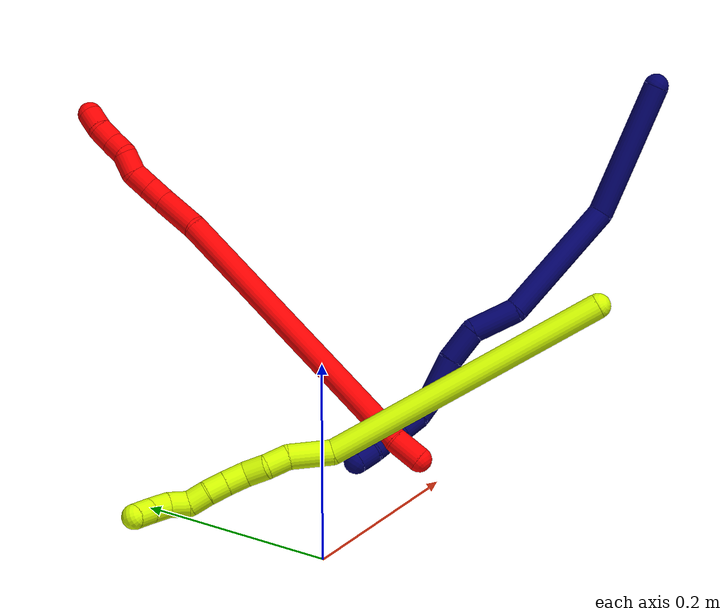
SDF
<sdf version="1.7">
 <world name="default">
  <model name="2">
   <static>0</static>
   <link name="2">
    <collision name="collision-cylinder-e_1_1_4">
     <pose>-0.002412 0.002305 0.014817 -0.15431 -0.159498 0.012357</pose>
     <geometry><cylinder><radius>0.0125</radius><length>0.030376</length></cylinder></geometry>
     <surface>
      <friction><ode><mu>1.16</mu><mu2>1.16</mu2><slip1>0</slip1><slip2>0</slip2></ode></friction>
      <contact><ode><kp>1e+06</kp><kd>1</kd><max_vel>0</max_vel><min_depth>0.001</min_depth></ode></contact>
     </surface>
    </collision>
    <visual name="visual-cylinder-e_1_1_4">
     <pose>-0.002412 0.002305 0.014817 -0.15431 -0.159498 0.012357</pose>
     <geometry><cylinder><radius>0.0125</radius><length>0.030376</length></cylinder></geometry>
     <material><ambient>1 0 0 1</ambient></material>
    </visual>
    <collision name="collision-cylinder-e_2_4_5">
     <pose>0.001014 0.017735 0.178184 -0.088128 0.039133 -0.001726</pose>
     <geometry><cylinder><radius>0.0125</radius><length>0.298486</length></cylinder></geometry>
     <surface>
      <friction><ode><mu>1.16</mu><mu2>1.16</mu2><slip1>0</slip1><slip2>0</slip2></ode></friction>
      <contact><ode><kp>1e+06</kp><kd>1</kd><max_vel>0</max_vel><min_depth>0.001</min_depth></ode></contact>
     </surface>
    </collision>
    <visual name="visual-cylinder-e_2_4_5">
     <pose>0.001014 0.017735 0.178184 -0.088128 0.039133 -0.001726</pose>
     <geometry><cylinder><radius>0.0125</radius><length>0.298486</length></cylinder></geometry>
     <material><ambient>1 0 0 1</ambient></material>
    </visual>
    <collision name="collision-cylinder-e_3_5_6">
     <pose>0.01281 0.037009 0.348718 -0.272708 0.255247 -0.035209</pose>
     <geometry><cylinder><radius>0.0125</radius><length>0.047183</length></cylinder></geometry>
     <surface>
      <friction><ode><mu>1.16</mu><mu2>1.16</mu2><slip1>0</slip1><slip2>0</slip2></ode></friction>
      <contact><ode><kp>1e+06</kp><kd>1</kd><max_vel>0</max_vel><min_depth>0.001</min_depth></ode></contact>
     </surface>
    </collision>
    <visual name="visual-cylinder-e_3_5_6">
     <pose>0.01281 0.037009 0.348718 -0.272708 0.255247 -0.035209</pose>
     <geometry><cylinder><radius>0.0125</radius><length>0.047183</length></cylinder></geometry>
     <material><ambient>1 0 0 1</ambient></material>
    </visual>
    <collision name="collision-cylinder-e_4_6_7">
     <pose>0.017797 0.044508 0.381524 -0.124245 -0.088638 0.005517</pose>
     <geometry><cylinder><radius>0.0125</radius><length>0.021899</length></cylinder></geometry>
     <surface>
      <friction><ode><mu>1.16</mu><mu2>1.16</mu2><slip1>0</slip1><slip2>0</slip2></ode></friction>
      <contact><ode><kp>1e+06</kp><kd>1</kd><max_vel>0</max_vel><min_depth>0.001</min_depth></ode></contact>
     </surface>
    </collision>
    <visual name="visual-cylinder-e_4_6_7">
     <pose>0.017797 0.044508 0.381524 -0.124245 -0.088638 0.005517</pose>
     <geometry><cylinder><radius>0.0125</radius><length>0.021899</length></cylinder></geometry>
     <material><ambient>1 0 0 1</ambient></material>
    </visual>
    <collision name="collision-cylinder-e_5_7_8">
     <pose>0.014683 0.046631 0.402243 -0.07774 -0.212753 0.008305</pose>
     <geometry><cylinder><radius>0.0125</radius><length>0.020312</length></cylinder></geometry>
     <surface>
      <friction><ode><mu>1.16</mu><mu2>1.16</mu2><slip1>0</slip1><slip2>0</slip2></ode></friction>
      <contact><ode><kp>1e+06</kp><kd>1</kd><max_vel>0</max_vel><min_depth>0.001</min_depth></ode></contact>
     </surface>
    </collision>
    <visual name="visual-cylinder-e_5_7_8">
     <pose>0.014683 0.046631 0.402243 -0.07774 -0.212753 0.008305</pose>
     <geometry><cylinder><radius>0.0125</radius><length>0.020312</length></cylinder></geometry>
     <material><ambient>1 0 0 1</ambient></material>
    </visual>
    <collision name="collision-cylinder-e_6_8_9">
     <pose>0.01299 0.04481 0.422571 0.243527 0.041912 0.005129</pose>
     <geometry><cylinder><radius>0.0125</radius><length>0.021515</length></cylinder></geometry>
     <surface>
      <friction><ode><mu>1.16</mu><mu2>1.16</mu2><slip1>0</slip1><slip2>0</slip2></ode></friction>
      <contact><ode><kp>1e+06</kp><kd>1</kd><max_vel>0</max_vel><min_depth>0.001</min_depth></ode></contact>
     </surface>
    </collision>
    <visual name="visual-cylinder-e_6_8_9">
     <pose>0.01299 0.04481 0.422571 0.243527 0.041912 0.005129</pose>
     <geometry><cylinder><radius>0.0125</radius><length>0.021515</length></cylinder></geometry>
     <material><ambient>1 0 0 1</ambient></material>
    </visual>
    <collision name="collision-cylinder-e_7_9_10">
     <pose>0.016219 0.044321 0.442497 -0.217937 0.278353 -0.030648</pose>
     <geometry><cylinder><radius>0.0125</radius><length>0.020227</length></cylinder></geometry>
     <surface>
      <friction><ode><mu>1.16</mu><mu2>1.16</mu2><slip1>0</slip1><slip2>0</slip2></ode></friction>
      <contact><ode><kp>1e+06</kp><kd>1</kd><max_vel>0</max_vel><min_depth>0.001</min_depth></ode></contact>
     </surface>
    </collision>
    <visual name="visual-cylinder-e_7_9_10">
     <pose>0.016219 0.044321 0.442497 -0.217937 0.278353 -0.030648</pose>
     <geometry><cylinder><radius>0.0125</radius><length>0.020227</length></cylinder></geometry>
     <material><ambient>1 0 0 1</ambient></material>
    </visual>
    <collision name="collision-cylinder-e_8_10_11">
     <pose>0.018548 0.04702 0.461964 -0.059696 -0.045063 0.001346</pose>
     <geometry><cylinder><radius>0.0125</radius><length>0.020001</length></cylinder></geometry>
     <surface>
      <friction><ode><mu>1.16</mu><mu2>1.16</mu2><slip1>0</slip1><slip2>0</slip2></ode></friction>
      <contact><ode><kp>1e+06</kp><kd>1</kd><max_vel>0</max_vel><min_depth>0.001</min_depth></ode></contact>
     </surface>
    </collision>
    <visual name="visual-cylinder-e_8_10_11">
     <pose>0.018548 0.04702 0.461964 -0.059696 -0.045063 0.001346</pose>
     <geometry><cylinder><radius>0.0125</radius><length>0.020001</length></cylinder></geometry>
     <material><ambient>1 0 0 1</ambient></material>
    </visual>
    <collision name="collision-cylinder-e_9_11_2">
     <pose>0.020791 0.047704 0.481566 -0.009144 0.272775 -0.001255</pose>
     <geometry><cylinder><radius>0.0125</radius><length>0.02</length></cylinder></geometry>
     <surface>
      <friction><ode><mu>1.16</mu><mu2>1.16</mu2><slip1>0</slip1><slip2>0</slip2></ode></friction>
      <contact><ode><kp>1e+06</kp><kd>1</kd><max_vel>0</max_vel><min_depth>0.001</min_depth></ode></contact>
     </surface>
    </collision>
    <visual name="visual-cylinder-e_9_11_2">
     <pose>0.020791 0.047704 0.481566 -0.009144 0.272775 -0.001255</pose>
     <geometry><cylinder><radius>0.0125</radius><length>0.02</length></cylinder></geometry>
     <material><ambient>1 0 0 1</ambient></material>
    </visual>
    <collision name="collision-sphere-2">
     <pose>0.023485 0.047792 0.491196 0 -0 0</pose>
     <geometry><sphere><radius>0.0125</radius></sphere></geometry>
     <surface>
      <friction><ode><mu>1.16</mu><mu2>1.16</mu2><slip1>0</slip1><slip2>0</slip2></ode></friction>
      <contact><ode><kp>1e+06</kp><kd>1</kd><max_vel>0</max_vel><min_depth>0.001</min_depth></ode></contact>
     </surface>
    </collision>
    <visual name="visual-sphere-2">
     <pose>0.023485 0.047792 0.491196 0 -0 0</pose>
     <geometry><sphere><radius>0.0125</radius></sphere></geometry>
     <material><ambient>1 0 0 1</ambient></material>
    </visual>
    <collision name="collision-sphere-11">
     <pose>0.018097 0.047616 0.471936 0 -0 0</pose>
     <geometry><sphere><radius>0.0125</radius></sphere></geometry>
     <surface>
      <friction><ode><mu>1.16</mu><mu2>1.16</mu2><slip1>0</slip1><slip2>0</slip2></ode></friction>
      <contact><ode><kp>1e+06</kp><kd>1</kd><max_vel>0</max_vel><min_depth>0.001</min_depth></ode></contact>
     </surface>
    </collision>
    <visual name="visual-sphere-11">
     <pose>0.018097 0.047616 0.471936 0 -0 0</pose>
     <geometry><sphere><radius>0.0125</radius></sphere></geometry>
     <material><ambient>1 0 0 1</ambient></material>
    </visual>
    <collision name="collision-sphere-10">
     <pose>0.018998 0.046424 0.451991 0 -0 0</pose>
     <geometry><sphere><radius>0.0125</radius></sphere></geometry>
     <surface>
      <friction><ode><mu>1.16</mu><mu2>1.16</mu2><slip1>0</slip1><slip2>0</slip2></ode></friction>
      <contact><ode><kp>1e+06</kp><kd>1</kd><max_vel>0</max_vel><min_depth>0.001</min_depth></ode></contact>
     </surface>
    </collision>
    <visual name="visual-sphere-10">
     <pose>0.018998 0.046424 0.451991 0 -0 0</pose>
     <geometry><sphere><radius>0.0125</radius></sphere></geometry>
     <material><ambient>1 0 0 1</ambient></material>
    </visual>
    <collision name="collision-sphere-9">
     <pose>0.01344 0.042219 0.433003 0 -0 0</pose>
     <geometry><sphere><radius>0.0125</radius></sphere></geometry>
     <surface>
      <friction><ode><mu>1.16</mu><mu2>1.16</mu2><slip1>0</slip1><slip2>0</slip2></ode></friction>
      <contact><ode><kp>1e+06</kp><kd>1</kd><max_vel>0</max_vel><min_depth>0.001</min_depth></ode></contact>
     </surface>
    </collision>
    <visual name="visual-sphere-9">
     <pose>0.01344 0.042219 0.433003 0 -0 0</pose>
     <geometry><sphere><radius>0.0125</radius></sphere></geometry>
     <material><ambient>1 0 0 1</ambient></material>
    </visual>
    <collision name="collision-sphere-4">
     <pose>-0.004824 0.004609 0.029634 0 -0 0</pose>
     <geometry><sphere><radius>0.0125</radius></sphere></geometry>
     <surface>
      <friction><ode><mu>1.16</mu><mu2>1.16</mu2><slip1>0</slip1><slip2>0</slip2></ode></friction>
      <contact><ode><kp>1e+06</kp><kd>1</kd><max_vel>0</max_vel><min_depth>0.001</min_depth></ode></contact>
     </surface>
    </collision>
    <visual name="visual-sphere-4">
     <pose>-0.004824 0.004609 0.029634 0 -0 0</pose>
     <geometry><sphere><radius>0.0125</radius></sphere></geometry>
     <material><ambient>1 0 0 1</ambient></material>
    </visual>
    <collision name="collision-sphere-1">
     <geometry><sphere><radius>0.0125</radius></sphere></geometry>
     <surface>
      <friction><ode><mu>1.16</mu><mu2>1.16</mu2><slip1>0</slip1><slip2>0</slip2></ode></friction>
      <contact><ode><kp>1e+06</kp><kd>1</kd><max_vel>0</max_vel><min_depth>0.001</min_depth></ode></contact>
     </surface>
    </collision>
    <visual name="visual-sphere-1">
     <geometry><sphere><radius>0.0125</radius></sphere></geometry>
     <material><ambient>1 0 0 1</ambient></material>
    </visual>
    <collision name="collision-sphere-8">
     <pose>0.012539 0.047402 0.41214 0 -0 0</pose>
     <geometry><sphere><radius>0.0125</radius></sphere></geometry>
     <surface>
      <friction><ode><mu>1.16</mu><mu2>1.16</mu2><slip1>0</slip1><slip2>0</slip2></ode></friction>
      <contact><ode><kp>1e+06</kp><kd>1</kd><max_vel>0</max_vel><min_depth>0.001</min_depth></ode></contact>
     </surface>
    </collision>
    <visual name="visual-sphere-8">
     <pose>0.012539 0.047402 0.41214 0 -0 0</pose>
     <geometry><sphere><radius>0.0125</radius></sphere></geometry>
     <material><ambient>1 0 0 1</ambient></material>
    </visual>
    <collision name="collision-sphere-5">
     <pose>0.006853 0.03086 0.326734 0 -0 0</pose>
     <geometry><sphere><radius>0.0125</radius></sphere></geometry>
     <surface>
      <friction><ode><mu>1.16</mu><mu2>1.16</mu2><slip1>0</slip1><slip2>0</slip2></ode></friction>
      <contact><ode><kp>1e+06</kp><kd>1</kd><max_vel>0</max_vel><min_depth>0.001</min_depth></ode></contact>
     </surface>
    </collision>
    <visual name="visual-sphere-5">
     <pose>0.006853 0.03086 0.326734 0 -0 0</pose>
     <geometry><sphere><radius>0.0125</radius></sphere></geometry>
     <material><ambient>1 0 0 1</ambient></material>
    </visual>
    <collision name="collision-sphere-6">
     <pose>0.018766 0.043157 0.370701 0 -0 0</pose>
     <geometry><sphere><radius>0.0125</radius></sphere></geometry>
     <surface>
      <friction><ode><mu>1.16</mu><mu2>1.16</mu2><slip1>0</slip1><slip2>0</slip2></ode></friction>
      <contact><ode><kp>1e+06</kp><kd>1</kd><max_vel>0</max_vel><min_depth>0.001</min_depth></ode></contact>
     </surface>
    </collision>
    <visual name="visual-sphere-6">
     <pose>0.018766 0.043157 0.370701 0 -0 0</pose>
     <geometry><sphere><radius>0.0125</radius></sphere></geometry>
     <material><ambient>1 0 0 1</ambient></material>
    </visual>
    <collision name="collision-sphere-7">
     <pose>0.016828 0.04586 0.392346 0 -0 0</pose>
     <geometry><sphere><radius>0.0125</radius></sphere></geometry>
     <surface>
      <friction><ode><mu>1.16</mu><mu2>1.16</mu2><slip1>0</slip1><slip2>0</slip2></ode></friction>
      <contact><ode><kp>1e+06</kp><kd>1</kd><max_vel>0</max_vel><min_depth>0.001</min_depth></ode></contact>
     </surface>
    </collision>
    <visual name="visual-sphere-7">
     <pose>0.016828 0.04586 0.392346 0 -0 0</pose>
     <geometry><sphere><radius>0.0125</radius></sphere></geometry>
     <material><ambient>1 0 0 1</ambient></material>
    </visual>
    <inertial>
     <pose>0.005833 0.025574 0.247056 0 -0 0</pose>
     <mass>0.5</mass>
     <inertia>
      <ixx>0.002247</ixx>
      <ixy>0</ixy>
      <ixz>0</ixz>
      <iyy>0.002242</iyy>
      <iyz>0</iyz>
      <izz>-0.000251</izz>
     </inertia>
    </inertial>
   </link>
   <pose>0.177376 0.006334 0.031615 -0.875034 0.293573 0.155033</pose>
  </model>
  <model name="7">
   <static>0</static>
   <link name="7">
    <collision name="collision-cylinder-e_1_1_4">
     <pose>0.01233 -0.005231 -0.067082 3.06377 0.181241 2.33204</pose>
     <geometry><cylinder><radius>0.0125</radius><length>0.136813</length></cylinder></geometry>
     <surface>
      <friction><ode><mu>1.16</mu><mu2>1.16</mu2><slip1>0</slip1><slip2>0</slip2></ode></friction>
      <contact><ode><kp>1e+06</kp><kd>1</kd><max_vel>0</max_vel><min_depth>0.001</min_depth></ode></contact>
     </surface>
    </collision>
    <visual name="visual-cylinder-e_1_1_4">
     <pose>0.01233 -0.005231 -0.067082 3.06377 0.181241 2.33204</pose>
     <geometry><cylinder><radius>0.0125</radius><length>0.136813</length></cylinder></geometry>
     <material><ambient>0.003922 0 0.403922 1</ambient></material>
    </visual>
    <collision name="collision-cylinder-e_2_4_5">
     <pose>0.004462 -0.011352 -0.19764 3.12757 -0.308048 -3.05134</pose>
     <geometry><cylinder><radius>0.0125</radius><length>0.133235</length></cylinder></geometry>
     <surface>
      <friction><ode><mu>1.16</mu><mu2>1.16</mu2><slip1>0</slip1><slip2>0</slip2></ode></friction>
      <contact><ode><kp>1e+06</kp><kd>1</kd><max_vel>0</max_vel><min_depth>0.001</min_depth></ode></contact>
     </surface>
    </collision>
    <visual name="visual-cylinder-e_2_4_5">
     <pose>0.004462 -0.011352 -0.19764 3.12757 -0.308048 -3.05134</pose>
     <geometry><cylinder><radius>0.0125</radius><length>0.133235</length></cylinder></geometry>
     <material><ambient>0.003922 0 0.403922 1</ambient></material>
    </visual>
    <collision name="collision-cylinder-e_3_5_6">
     <pose>-0.024235 -0.003157 -0.280754 -2.70827 -0.374259 1.42078</pose>
     <geometry><cylinder><radius>0.0125</radius><length>0.046496</length></cylinder></geometry>
     <surface>
      <friction><ode><mu>1.16</mu><mu2>1.16</mu2><slip1>0</slip1><slip2>0</slip2></ode></friction>
      <contact><ode><kp>1e+06</kp><kd>1</kd><max_vel>0</max_vel><min_depth>0.001</min_depth></ode></contact>
     </surface>
    </collision>
    <visual name="visual-cylinder-e_3_5_6">
     <pose>-0.024235 -0.003157 -0.280754 -2.70827 -0.374259 1.42078</pose>
     <geometry><cylinder><radius>0.0125</radius><length>0.046496</length></cylinder></geometry>
     <material><ambient>0.003922 0 0.403922 1</ambient></material>
    </visual>
    <collision name="collision-cylinder-e_4_6_7">
     <pose>-0.032589 0.007907 -0.31798 -3.02961 0.008197 -0.145989</pose>
     <geometry><cylinder><radius>0.0125</radius><length>0.035396</length></cylinder></geometry>
     <surface>
      <friction><ode><mu>1.16</mu><mu2>1.16</mu2><slip1>0</slip1><slip2>0</slip2></ode></friction>
      <contact><ode><kp>1e+06</kp><kd>1</kd><max_vel>0</max_vel><min_depth>0.001</min_depth></ode></contact>
     </surface>
    </collision>
    <visual name="visual-cylinder-e_4_6_7">
     <pose>-0.032589 0.007907 -0.31798 -3.02961 0.008197 -0.145989</pose>
     <geometry><cylinder><radius>0.0125</radius><length>0.035396</length></cylinder></geometry>
     <material><ambient>0.003922 0 0.403922 1</ambient></material>
    </visual>
    <collision name="collision-cylinder-e_5_7_8">
     <pose>-0.030161 0.008674 -0.355483 3.08089 0.113922 2.16303</pose>
     <geometry><cylinder><radius>0.0125</radius><length>0.040167</length></cylinder></geometry>
     <surface>
      <friction><ode><mu>1.16</mu><mu2>1.16</mu2><slip1>0</slip1><slip2>0</slip2></ode></friction>
      <contact><ode><kp>1e+06</kp><kd>1</kd><max_vel>0</max_vel><min_depth>0.001</min_depth></ode></contact>
     </surface>
    </collision>
    <visual name="visual-cylinder-e_5_7_8">
     <pose>-0.030161 0.008674 -0.355483 3.08089 0.113922 2.16303</pose>
     <geometry><cylinder><radius>0.0125</radius><length>0.040167</length></cylinder></geometry>
     <material><ambient>0.003922 0 0.403922 1</ambient></material>
    </visual>
    <collision name="collision-cylinder-e_6_8_9">
     <pose>-0.031156 0.006315 -0.387594 3.0477 -0.261494 -2.45532</pose>
     <geometry><cylinder><radius>0.0125</radius><length>0.025359</length></cylinder></geometry>
     <surface>
      <friction><ode><mu>1.16</mu><mu2>1.16</mu2><slip1>0</slip1><slip2>0</slip2></ode></friction>
      <contact><ode><kp>1e+06</kp><kd>1</kd><max_vel>0</max_vel><min_depth>0.001</min_depth></ode></contact>
     </surface>
    </collision>
    <visual name="visual-cylinder-e_6_8_9">
     <pose>-0.031156 0.006315 -0.387594 3.0477 -0.261494 -2.45532</pose>
     <geometry><cylinder><radius>0.0125</radius><length>0.025359</length></cylinder></geometry>
     <material><ambient>0.003922 0 0.403922 1</ambient></material>
    </visual>
    <collision name="collision-cylinder-e_7_9_10">
     <pose>-0.039296 0.006341 -0.409803 -3.02487 -0.449311 2.64096</pose>
     <geometry><cylinder><radius>0.0125</radius><length>0.022388</length></cylinder></geometry>
     <surface>
      <friction><ode><mu>1.16</mu><mu2>1.16</mu2><slip1>0</slip1><slip2>0</slip2></ode></friction>
      <contact><ode><kp>1e+06</kp><kd>1</kd><max_vel>0</max_vel><min_depth>0.001</min_depth></ode></contact>
     </surface>
    </collision>
    <visual name="visual-cylinder-e_7_9_10">
     <pose>-0.039296 0.006341 -0.409803 -3.02487 -0.449311 2.64096</pose>
     <geometry><cylinder><radius>0.0125</radius><length>0.022388</length></cylinder></geometry>
     <material><ambient>0.003922 0 0.403922 1</ambient></material>
    </visual>
    <collision name="collision-cylinder-e_8_10_11">
     <pose>-0.049802 0.007996 -0.428064 -3.08342 -0.599401 2.95383</pose>
     <geometry><cylinder><radius>0.0125</radius><length>0.020008</length></cylinder></geometry>
     <surface>
      <friction><ode><mu>1.16</mu><mu2>1.16</mu2><slip1>0</slip1><slip2>0</slip2></ode></friction>
      <contact><ode><kp>1e+06</kp><kd>1</kd><max_vel>0</max_vel><min_depth>0.001</min_depth></ode></contact>
     </surface>
    </collision>
    <visual name="visual-cylinder-e_8_10_11">
     <pose>-0.049802 0.007996 -0.428064 -3.08342 -0.599401 2.95383</pose>
     <geometry><cylinder><radius>0.0125</radius><length>0.020008</length></cylinder></geometry>
     <material><ambient>0.003922 0 0.403922 1</ambient></material>
    </visual>
    <collision name="collision-cylinder-e_9_11_12">
     <pose>-0.061947 0.007695 -0.443933 3.03948 -0.703544 -2.86493</pose>
     <geometry><cylinder><radius>0.0125</radius><length>0.0201</length></cylinder></geometry>
     <surface>
      <friction><ode><mu>1.16</mu><mu2>1.16</mu2><slip1>0</slip1><slip2>0</slip2></ode></friction>
      <contact><ode><kp>1e+06</kp><kd>1</kd><max_vel>0</max_vel><min_depth>0.001</min_depth></ode></contact>
     </surface>
    </collision>
    <visual name="visual-cylinder-e_9_11_12">
     <pose>-0.061947 0.007695 -0.443933 3.03948 -0.703544 -2.86493</pose>
     <geometry><cylinder><radius>0.0125</radius><length>0.0201</length></cylinder></geometry>
     <material><ambient>0.003922 0 0.403922 1</ambient></material>
    </visual>
    <collision name="collision-cylinder-e_10_12_2">
     <pose>-0.073992 0.007986 -0.459833 -3.01269 -0.586332 2.72031</pose>
     <geometry><cylinder><radius>0.0125</radius><length>0.020037</length></cylinder></geometry>
     <surface>
      <friction><ode><mu>1.16</mu><mu2>1.16</mu2><slip1>0</slip1><slip2>0</slip2></ode></friction>
      <contact><ode><kp>1e+06</kp><kd>1</kd><max_vel>0</max_vel><min_depth>0.001</min_depth></ode></contact>
     </surface>
    </collision>
    <visual name="visual-cylinder-e_10_12_2">
     <pose>-0.073992 0.007986 -0.459833 -3.01269 -0.586332 2.72031</pose>
     <geometry><cylinder><radius>0.0125</radius><length>0.020037</length></cylinder></geometry>
     <material><ambient>0.003922 0 0.403922 1</ambient></material>
    </visual>
    <collision name="collision-sphere-2">
     <pose>-0.079536 0.009059 -0.46811 0 -0 0</pose>
     <geometry><sphere><radius>0.0125</radius></sphere></geometry>
     <surface>
      <friction><ode><mu>1.16</mu><mu2>1.16</mu2><slip1>0</slip1><slip2>0</slip2></ode></friction>
      <contact><ode><kp>1e+06</kp><kd>1</kd><max_vel>0</max_vel><min_depth>0.001</min_depth></ode></contact>
     </surface>
    </collision>
    <visual name="visual-sphere-2">
     <pose>-0.079536 0.009059 -0.46811 0 -0 0</pose>
     <geometry><sphere><radius>0.0125</radius></sphere></geometry>
     <material><ambient>0.003922 0 0.403922 1</ambient></material>
    </visual>
    <collision name="collision-sphere-12">
     <pose>-0.068449 0.006913 -0.451557 0 -0 0</pose>
     <geometry><sphere><radius>0.0125</radius></sphere></geometry>
     <surface>
      <friction><ode><mu>1.16</mu><mu2>1.16</mu2><slip1>0</slip1><slip2>0</slip2></ode></friction>
      <contact><ode><kp>1e+06</kp><kd>1</kd><max_vel>0</max_vel><min_depth>0.001</min_depth></ode></contact>
     </surface>
    </collision>
    <visual name="visual-sphere-12">
     <pose>-0.068449 0.006913 -0.451557 0 -0 0</pose>
     <geometry><sphere><radius>0.0125</radius></sphere></geometry>
     <material><ambient>0.003922 0 0.403922 1</ambient></material>
    </visual>
    <collision name="collision-sphere-11">
     <pose>-0.055446 0.008476 -0.43631 0 -0 0</pose>
     <geometry><sphere><radius>0.0125</radius></sphere></geometry>
     <surface>
      <friction><ode><mu>1.16</mu><mu2>1.16</mu2><slip1>0</slip1><slip2>0</slip2></ode></friction>
      <contact><ode><kp>1e+06</kp><kd>1</kd><max_vel>0</max_vel><min_depth>0.001</min_depth></ode></contact>
     </surface>
    </collision>
    <visual name="visual-sphere-11">
     <pose>-0.055446 0.008476 -0.43631 0 -0 0</pose>
     <geometry><sphere><radius>0.0125</radius></sphere></geometry>
     <material><ambient>0.003922 0 0.403922 1</ambient></material>
    </visual>
    <collision name="collision-sphere-10">
     <pose>-0.044158 0.007515 -0.419818 0 -0 0</pose>
     <geometry><sphere><radius>0.0125</radius></sphere></geometry>
     <surface>
      <friction><ode><mu>1.16</mu><mu2>1.16</mu2><slip1>0</slip1><slip2>0</slip2></ode></friction>
      <contact><ode><kp>1e+06</kp><kd>1</kd><max_vel>0</max_vel><min_depth>0.001</min_depth></ode></contact>
     </surface>
    </collision>
    <visual name="visual-sphere-10">
     <pose>-0.044158 0.007515 -0.419818 0 -0 0</pose>
     <geometry><sphere><radius>0.0125</radius></sphere></geometry>
     <material><ambient>0.003922 0 0.403922 1</ambient></material>
    </visual>
    <collision name="collision-sphere-9">
     <pose>-0.034434 0.005167 -0.399789 0 -0 0</pose>
     <geometry><sphere><radius>0.0125</radius></sphere></geometry>
     <surface>
      <friction><ode><mu>1.16</mu><mu2>1.16</mu2><slip1>0</slip1><slip2>0</slip2></ode></friction>
      <contact><ode><kp>1e+06</kp><kd>1</kd><max_vel>0</max_vel><min_depth>0.001</min_depth></ode></contact>
     </surface>
    </collision>
    <visual name="visual-sphere-9">
     <pose>-0.034434 0.005167 -0.399789 0 -0 0</pose>
     <geometry><sphere><radius>0.0125</radius></sphere></geometry>
     <material><ambient>0.003922 0 0.403922 1</ambient></material>
    </visual>
    <collision name="collision-sphere-4">
     <pose>0.024661 -0.010462 -0.134165 0 -0 0</pose>
     <geometry><sphere><radius>0.0125</radius></sphere></geometry>
     <surface>
      <friction><ode><mu>1.16</mu><mu2>1.16</mu2><slip1>0</slip1><slip2>0</slip2></ode></friction>
      <contact><ode><kp>1e+06</kp><kd>1</kd><max_vel>0</max_vel><min_depth>0.001</min_depth></ode></contact>
     </surface>
    </collision>
    <visual name="visual-sphere-4">
     <pose>0.024661 -0.010462 -0.134165 0 -0 0</pose>
     <geometry><sphere><radius>0.0125</radius></sphere></geometry>
     <material><ambient>0.003922 0 0.403922 1</ambient></material>
    </visual>
    <collision name="collision-sphere-1">
     <geometry><sphere><radius>0.0125</radius></sphere></geometry>
     <surface>
      <friction><ode><mu>1.16</mu><mu2>1.16</mu2><slip1>0</slip1><slip2>0</slip2></ode></friction>
      <contact><ode><kp>1e+06</kp><kd>1</kd><max_vel>0</max_vel><min_depth>0.001</min_depth></ode></contact>
     </surface>
    </collision>
    <visual name="visual-sphere-1">
     <geometry><sphere><radius>0.0125</radius></sphere></geometry>
     <material><ambient>0.003922 0 0.403922 1</ambient></material>
    </visual>
    <collision name="collision-sphere-8">
     <pose>-0.027878 0.007464 -0.375399 0 -0 0</pose>
     <geometry><sphere><radius>0.0125</radius></sphere></geometry>
     <surface>
      <friction><ode><mu>1.16</mu><mu2>1.16</mu2><slip1>0</slip1><slip2>0</slip2></ode></friction>
      <contact><ode><kp>1e+06</kp><kd>1</kd><max_vel>0</max_vel><min_depth>0.001</min_depth></ode></contact>
     </surface>
    </collision>
    <visual name="visual-sphere-8">
     <pose>-0.027878 0.007464 -0.375399 0 -0 0</pose>
     <geometry><sphere><radius>0.0125</radius></sphere></geometry>
     <material><ambient>0.003922 0 0.403922 1</ambient></material>
    </visual>
    <collision name="collision-sphere-5">
     <pose>-0.015736 -0.012242 -0.261115 0 -0 0</pose>
     <geometry><sphere><radius>0.0125</radius></sphere></geometry>
     <surface>
      <friction><ode><mu>1.16</mu><mu2>1.16</mu2><slip1>0</slip1><slip2>0</slip2></ode></friction>
      <contact><ode><kp>1e+06</kp><kd>1</kd><max_vel>0</max_vel><min_depth>0.001</min_depth></ode></contact>
     </surface>
    </collision>
    <visual name="visual-sphere-5">
     <pose>-0.015736 -0.012242 -0.261115 0 -0 0</pose>
     <geometry><sphere><radius>0.0125</radius></sphere></geometry>
     <material><ambient>0.003922 0 0.403922 1</ambient></material>
    </visual>
    <collision name="collision-sphere-6">
     <pose>-0.032734 0.005929 -0.300393 0 -0 0</pose>
     <geometry><sphere><radius>0.0125</radius></sphere></geometry>
     <surface>
      <friction><ode><mu>1.16</mu><mu2>1.16</mu2><slip1>0</slip1><slip2>0</slip2></ode></friction>
      <contact><ode><kp>1e+06</kp><kd>1</kd><max_vel>0</max_vel><min_depth>0.001</min_depth></ode></contact>
     </surface>
    </collision>
    <visual name="visual-sphere-6">
     <pose>-0.032734 0.005929 -0.300393 0 -0 0</pose>
     <geometry><sphere><radius>0.0125</radius></sphere></geometry>
     <material><ambient>0.003922 0 0.403922 1</ambient></material>
    </visual>
    <collision name="collision-sphere-7">
     <pose>-0.032444 0.009885 -0.335566 0 -0 0</pose>
     <geometry><sphere><radius>0.0125</radius></sphere></geometry>
     <surface>
      <friction><ode><mu>1.16</mu><mu2>1.16</mu2><slip1>0</slip1><slip2>0</slip2></ode></friction>
      <contact><ode><kp>1e+06</kp><kd>1</kd><max_vel>0</max_vel><min_depth>0.001</min_depth></ode></contact>
     </surface>
    </collision>
    <visual name="visual-sphere-7">
     <pose>-0.032444 0.009885 -0.335566 0 -0 0</pose>
     <geometry><sphere><radius>0.0125</radius></sphere></geometry>
     <material><ambient>0.003922 0 0.403922 1</ambient></material>
    </visual>
    <inertial>
     <pose>-0.013209 -0.00194 -0.239607 0 -0 0</pose>
     <mass>0.5</mass>
     <inertia><ixx>-0.000198</ixx><ixy>0</ixy><ixz>0</ixz><iyy>0.000514</iyy><iyz>0</iyz><izz>7e-06</izz></inertia>
    </inertial>
   </link>
   <pose>0.470429 -0.081593 0.344743 0.268197 0.638404 -0.012261</pose>
  </model>
  <model name="15">
   <static>0</static>
   <link name="15">
    <collision name="collision-cylinder-e_1_1_4">
     <pose>-0.060312 0.039253 -0.126311 -2.84029 -0.427811 1.92175</pose>
     <geometry><cylinder><radius>0.0125</radius><length>0.290742</length></cylinder></geometry>
     <surface>
      <friction><ode><mu>1.16</mu><mu2>1.16</mu2><slip1>0</slip1><slip2>0</slip2></ode></friction>
      <contact><ode><kp>1e+06</kp><kd>1</kd><max_vel>0</max_vel><min_depth>0.001</min_depth></ode></contact>
     </surface>
    </collision>
    <visual name="visual-cylinder-e_1_1_4">
     <pose>-0.060312 0.039253 -0.126311 -2.84029 -0.427811 1.92175</pose>
     <geometry><cylinder><radius>0.0125</radius><length>0.290742</length></cylinder></geometry>
     <material><ambient>0.835294 1 0 1</ambient></material>
    </visual>
    <collision name="collision-cylinder-e_2_4_5">
     <pose>-0.124408 0.091451 -0.269571 -2.48932 -0.175641 0.509353</pose>
     <geometry><cylinder><radius>0.0125</radius><length>0.043321</length></cylinder></geometry>
     <surface>
      <friction><ode><mu>1.16</mu><mu2>1.16</mu2><slip1>0</slip1><slip2>0</slip2></ode></friction>
      <contact><ode><kp>1e+06</kp><kd>1</kd><max_vel>0</max_vel><min_depth>0.001</min_depth></ode></contact>
     </surface>
    </collision>
    <visual name="visual-cylinder-e_2_4_5">
     <pose>-0.124408 0.091451 -0.269571 -2.48932 -0.175641 0.509353</pose>
     <geometry><cylinder><radius>0.0125</radius><length>0.043321</length></cylinder></geometry>
     <material><ambient>0.835294 1 0 1</ambient></material>
    </visual>
    <collision name="collision-cylinder-e_3_5_6">
     <pose>-0.133312 0.109253 -0.295354 -2.63897 -0.469819 1.50063</pose>
     <geometry><cylinder><radius>0.0125</radius><length>0.022613</length></cylinder></geometry>
     <surface>
      <friction><ode><mu>1.16</mu><mu2>1.16</mu2><slip1>0</slip1><slip2>0</slip2></ode></friction>
      <contact><ode><kp>1e+06</kp><kd>1</kd><max_vel>0</max_vel><min_depth>0.001</min_depth></ode></contact>
     </surface>
    </collision>
    <visual name="visual-cylinder-e_3_5_6">
     <pose>-0.133312 0.109253 -0.295354 -2.63897 -0.469819 1.50063</pose>
     <geometry><cylinder><radius>0.0125</radius><length>0.022613</length></cylinder></geometry>
     <material><ambient>0.835294 1 0 1</ambient></material>
    </visual>
    <collision name="collision-cylinder-e_4_6_7">
     <pose>-0.140477 0.116785 -0.31446 -2.88675 -0.190473 1.28137</pose>
     <geometry><cylinder><radius>0.0125</radius><length>0.021619</length></cylinder></geometry>
     <surface>
      <friction><ode><mu>1.16</mu><mu2>1.16</mu2><slip1>0</slip1><slip2>0</slip2></ode></friction>
      <contact><ode><kp>1e+06</kp><kd>1</kd><max_vel>0</max_vel><min_depth>0.001</min_depth></ode></contact>
     </surface>
    </collision>
    <visual name="visual-cylinder-e_4_6_7">
     <pose>-0.140477 0.116785 -0.31446 -2.88675 -0.190473 1.28137</pose>
     <geometry><cylinder><radius>0.0125</radius><length>0.021619</length></cylinder></geometry>
     <material><ambient>0.835294 1 0 1</ambient></material>
    </visual>
    <collision name="collision-cylinder-e_5_7_8">
     <pose>-0.147154 0.123765 -0.333364 -2.67907 -0.447518 1.53667</pose>
     <geometry><cylinder><radius>0.0125</radius><length>0.0214</length></cylinder></geometry>
     <surface>
      <friction><ode><mu>1.16</mu><mu2>1.16</mu2><slip1>0</slip1><slip2>0</slip2></ode></friction>
      <contact><ode><kp>1e+06</kp><kd>1</kd><max_vel>0</max_vel><min_depth>0.001</min_depth></ode></contact>
     </surface>
    </collision>
    <visual name="visual-cylinder-e_5_7_8">
     <pose>-0.147154 0.123765 -0.333364 -2.67907 -0.447518 1.53667</pose>
     <geometry><cylinder><radius>0.0125</radius><length>0.0214</length></cylinder></geometry>
     <material><ambient>0.835294 1 0 1</ambient></material>
    </visual>
    <collision name="collision-cylinder-e_6_8_9">
     <pose>-0.156646 0.132031 -0.349907 -2.67728 -0.502494 1.6529</pose>
     <geometry><cylinder><radius>0.0125</radius><length>0.020188</length></cylinder></geometry>
     <surface>
      <friction><ode><mu>1.16</mu><mu2>1.16</mu2><slip1>0</slip1><slip2>0</slip2></ode></friction>
      <contact><ode><kp>1e+06</kp><kd>1</kd><max_vel>0</max_vel><min_depth>0.001</min_depth></ode></contact>
     </surface>
    </collision>
    <visual name="visual-cylinder-e_6_8_9">
     <pose>-0.156646 0.132031 -0.349907 -2.67728 -0.502494 1.6529</pose>
     <geometry><cylinder><radius>0.0125</radius><length>0.020188</length></cylinder></geometry>
     <material><ambient>0.835294 1 0 1</ambient></material>
    </visual>
    <collision name="collision-cylinder-e_7_9_10">
     <pose>-0.166103 0.138587 -0.366339 -2.84604 -0.476355 2.04155</pose>
     <geometry><cylinder><radius>0.0125</radius><length>0.020048</length></cylinder></geometry>
     <surface>
      <friction><ode><mu>1.16</mu><mu2>1.16</mu2><slip1>0</slip1><slip2>0</slip2></ode></friction>
      <contact><ode><kp>1e+06</kp><kd>1</kd><max_vel>0</max_vel><min_depth>0.001</min_depth></ode></contact>
     </surface>
    </collision>
    <visual name="visual-cylinder-e_7_9_10">
     <pose>-0.166103 0.138587 -0.366339 -2.84604 -0.476355 2.04155</pose>
     <geometry><cylinder><radius>0.0125</radius><length>0.020048</length></cylinder></geometry>
     <material><ambient>0.835294 1 0 1</ambient></material>
    </visual>
    <collision name="collision-cylinder-e_8_10_11">
     <pose>-0.172129 0.14761 -0.382421 -2.437 -0.143052 0.384955</pose>
     <geometry><cylinder><radius>0.0125</radius><length>0.020053</length></cylinder></geometry>
     <surface>
      <friction><ode><mu>1.16</mu><mu2>1.16</mu2><slip1>0</slip1><slip2>0</slip2></ode></friction>
      <contact><ode><kp>1e+06</kp><kd>1</kd><max_vel>0</max_vel><min_depth>0.001</min_depth></ode></contact>
     </surface>
    </collision>
    <visual name="visual-cylinder-e_8_10_11">
     <pose>-0.172129 0.14761 -0.382421 -2.437 -0.143052 0.384955</pose>
     <geometry><cylinder><radius>0.0125</radius><length>0.020053</length></cylinder></geometry>
     <material><ambient>0.835294 1 0 1</ambient></material>
    </visual>
    <collision name="collision-cylinder-e_9_11_12">
     <pose>-0.178717 0.160807 -0.395235 -2.23073 -0.541889 1.03183</pose>
     <geometry><cylinder><radius>0.0125</radius><length>0.020003</length></cylinder></geometry>
     <surface>
      <friction><ode><mu>1.16</mu><mu2>1.16</mu2><slip1>0</slip1><slip2>0</slip2></ode></friction>
      <contact><ode><kp>1e+06</kp><kd>1</kd><max_vel>0</max_vel><min_depth>0.001</min_depth></ode></contact>
     </surface>
    </collision>
    <visual name="visual-cylinder-e_9_11_12">
     <pose>-0.178717 0.160807 -0.395235 -2.23073 -0.541889 1.03183</pose>
     <geometry><cylinder><radius>0.0125</radius><length>0.020003</length></cylinder></geometry>
     <material><ambient>0.835294 1 0 1</ambient></material>
    </visual>
    <collision name="collision-cylinder-e_10_12_2">
     <pose>-0.189887 0.174819 -0.403885 -2.00932 -0.644506 0.967477</pose>
     <geometry><cylinder><radius>0.0125</radius><length>0.020012</length></cylinder></geometry>
     <surface>
      <friction><ode><mu>1.16</mu><mu2>1.16</mu2><slip1>0</slip1><slip2>0</slip2></ode></friction>
      <contact><ode><kp>1e+06</kp><kd>1</kd><max_vel>0</max_vel><min_depth>0.001</min_depth></ode></contact>
     </surface>
    </collision>
    <visual name="visual-cylinder-e_10_12_2">
     <pose>-0.189887 0.174819 -0.403885 -2.00932 -0.644506 0.967477</pose>
     <geometry><cylinder><radius>0.0125</radius><length>0.020012</length></cylinder></geometry>
     <material><ambient>0.835294 1 0 1</ambient></material>
    </visual>
    <collision name="collision-sphere-2">
     <pose>-0.195899 0.182061 -0.407281 0 -0 0</pose>
     <geometry><sphere><radius>0.0125</radius></sphere></geometry>
     <surface>
      <friction><ode><mu>1.16</mu><mu2>1.16</mu2><slip1>0</slip1><slip2>0</slip2></ode></friction>
      <contact><ode><kp>1e+06</kp><kd>1</kd><max_vel>0</max_vel><min_depth>0.001</min_depth></ode></contact>
     </surface>
    </collision>
    <visual name="visual-sphere-2">
     <pose>-0.195899 0.182061 -0.407281 0 -0 0</pose>
     <geometry><sphere><radius>0.0125</radius></sphere></geometry>
     <material><ambient>0.835294 1 0 1</ambient></material>
    </visual>
    <collision name="collision-sphere-12">
     <pose>-0.183875 0.167577 -0.400488 0 -0 0</pose>
     <geometry><sphere><radius>0.0125</radius></sphere></geometry>
     <surface>
      <friction><ode><mu>1.16</mu><mu2>1.16</mu2><slip1>0</slip1><slip2>0</slip2></ode></friction>
      <contact><ode><kp>1e+06</kp><kd>1</kd><max_vel>0</max_vel><min_depth>0.001</min_depth></ode></contact>
     </surface>
    </collision>
    <visual name="visual-sphere-12">
     <pose>-0.183875 0.167577 -0.400488 0 -0 0</pose>
     <geometry><sphere><radius>0.0125</radius></sphere></geometry>
     <material><ambient>0.835294 1 0 1</ambient></material>
    </visual>
    <collision name="collision-sphere-11">
     <pose>-0.173559 0.154038 -0.389982 0 -0 0</pose>
     <geometry><sphere><radius>0.0125</radius></sphere></geometry>
     <surface>
      <friction><ode><mu>1.16</mu><mu2>1.16</mu2><slip1>0</slip1><slip2>0</slip2></ode></friction>
      <contact><ode><kp>1e+06</kp><kd>1</kd><max_vel>0</max_vel><min_depth>0.001</min_depth></ode></contact>
     </surface>
    </collision>
    <visual name="visual-sphere-11">
     <pose>-0.173559 0.154038 -0.389982 0 -0 0</pose>
     <geometry><sphere><radius>0.0125</radius></sphere></geometry>
     <material><ambient>0.835294 1 0 1</ambient></material>
    </visual>
    <collision name="collision-sphere-10">
     <pose>-0.1707 0.141181 -0.37486 0 -0 0</pose>
     <geometry><sphere><radius>0.0125</radius></sphere></geometry>
     <surface>
      <friction><ode><mu>1.16</mu><mu2>1.16</mu2><slip1>0</slip1><slip2>0</slip2></ode></friction>
      <contact><ode><kp>1e+06</kp><kd>1</kd><max_vel>0</max_vel><min_depth>0.001</min_depth></ode></contact>
     </surface>
    </collision>
    <visual name="visual-sphere-10">
     <pose>-0.1707 0.141181 -0.37486 0 -0 0</pose>
     <geometry><sphere><radius>0.0125</radius></sphere></geometry>
     <material><ambient>0.835294 1 0 1</ambient></material>
    </visual>
    <collision name="collision-sphere-9">
     <pose>-0.161507 0.135992 -0.357817 0 -0 0</pose>
     <geometry><sphere><radius>0.0125</radius></sphere></geometry>
     <surface>
      <friction><ode><mu>1.16</mu><mu2>1.16</mu2><slip1>0</slip1><slip2>0</slip2></ode></friction>
      <contact><ode><kp>1e+06</kp><kd>1</kd><max_vel>0</max_vel><min_depth>0.001</min_depth></ode></contact>
     </surface>
    </collision>
    <visual name="visual-sphere-9">
     <pose>-0.161507 0.135992 -0.357817 0 -0 0</pose>
     <geometry><sphere><radius>0.0125</radius></sphere></geometry>
     <material><ambient>0.835294 1 0 1</ambient></material>
    </visual>
    <collision name="collision-sphere-4">
     <pose>-0.120623 0.078505 -0.252622 0 -0 0</pose>
     <geometry><sphere><radius>0.0125</radius></sphere></geometry>
     <surface>
      <friction><ode><mu>1.16</mu><mu2>1.16</mu2><slip1>0</slip1><slip2>0</slip2></ode></friction>
      <contact><ode><kp>1e+06</kp><kd>1</kd><max_vel>0</max_vel><min_depth>0.001</min_depth></ode></contact>
     </surface>
    </collision>
    <visual name="visual-sphere-4">
     <pose>-0.120623 0.078505 -0.252622 0 -0 0</pose>
     <geometry><sphere><radius>0.0125</radius></sphere></geometry>
     <material><ambient>0.835294 1 0 1</ambient></material>
    </visual>
    <collision name="collision-sphere-1">
     <geometry><sphere><radius>0.0125</radius></sphere></geometry>
     <surface>
      <friction><ode><mu>1.16</mu><mu2>1.16</mu2><slip1>0</slip1><slip2>0</slip2></ode></friction>
      <contact><ode><kp>1e+06</kp><kd>1</kd><max_vel>0</max_vel><min_depth>0.001</min_depth></ode></contact>
     </surface>
    </collision>
    <visual name="visual-sphere-1">
     <geometry><sphere><radius>0.0125</radius></sphere></geometry>
     <material><ambient>0.835294 1 0 1</ambient></material>
    </visual>
    <collision name="collision-sphere-8">
     <pose>-0.151784 0.128069 -0.341997 0 -0 0</pose>
     <geometry><sphere><radius>0.0125</radius></sphere></geometry>
     <surface>
      <friction><ode><mu>1.16</mu><mu2>1.16</mu2><slip1>0</slip1><slip2>0</slip2></ode></friction>
      <contact><ode><kp>1e+06</kp><kd>1</kd><max_vel>0</max_vel><min_depth>0.001</min_depth></ode></contact>
     </surface>
    </collision>
    <visual name="visual-sphere-8">
     <pose>-0.151784 0.128069 -0.341997 0 -0 0</pose>
     <geometry><sphere><radius>0.0125</radius></sphere></geometry>
     <material><ambient>0.835294 1 0 1</ambient></material>
    </visual>
    <collision name="collision-sphere-5">
     <pose>-0.128193 0.104396 -0.286519 0 -0 0</pose>
     <geometry><sphere><radius>0.0125</radius></sphere></geometry>
     <surface>
      <friction><ode><mu>1.16</mu><mu2>1.16</mu2><slip1>0</slip1><slip2>0</slip2></ode></friction>
      <contact><ode><kp>1e+06</kp><kd>1</kd><max_vel>0</max_vel><min_depth>0.001</min_depth></ode></contact>
     </surface>
    </collision>
    <visual name="visual-sphere-5">
     <pose>-0.128193 0.104396 -0.286519 0 -0 0</pose>
     <geometry><sphere><radius>0.0125</radius></sphere></geometry>
     <material><ambient>0.835294 1 0 1</ambient></material>
    </visual>
    <collision name="collision-sphere-6">
     <pose>-0.13843 0.114109 -0.304189 0 -0 0</pose>
     <geometry><sphere><radius>0.0125</radius></sphere></geometry>
     <surface>
      <friction><ode><mu>1.16</mu><mu2>1.16</mu2><slip1>0</slip1><slip2>0</slip2></ode></friction>
      <contact><ode><kp>1e+06</kp><kd>1</kd><max_vel>0</max_vel><min_depth>0.001</min_depth></ode></contact>
     </surface>
    </collision>
    <visual name="visual-sphere-6">
     <pose>-0.13843 0.114109 -0.304189 0 -0 0</pose>
     <geometry><sphere><radius>0.0125</radius></sphere></geometry>
     <material><ambient>0.835294 1 0 1</ambient></material>
    </visual>
    <collision name="collision-sphere-7">
     <pose>-0.142523 0.119461 -0.324731 0 -0 0</pose>
     <geometry><sphere><radius>0.0125</radius></sphere></geometry>
     <surface>
      <friction><ode><mu>1.16</mu><mu2>1.16</mu2><slip1>0</slip1><slip2>0</slip2></ode></friction>
      <contact><ode><kp>1e+06</kp><kd>1</kd><max_vel>0</max_vel><min_depth>0.001</min_depth></ode></contact>
     </surface>
    </collision>
    <visual name="visual-sphere-7">
     <pose>-0.142523 0.119461 -0.324731 0 -0 0</pose>
     <geometry><sphere><radius>0.0125</radius></sphere></geometry>
     <material><ambient>0.835294 1 0 1</ambient></material>
    </visual>
    <inertial>
     <pose>-0.098889 0.076274 -0.214158 0 -0 0</pose>
     <mass>0.5</mass>
     <inertia>
      <ixx>0.001124</ixx>
      <ixy>0</ixy>
      <ixz>0</ixz>
      <iyy>0.002697</iyy>
      <iyz>0</iyz>
      <izz>0.000262</izz>
     </inertia>
    </inertial>
   </link>
   <pose>0.284013 -0.128136 0.186961 0.959935 -0.546297 0.534254</pose>
  </model>
 </world>
</sdf>
